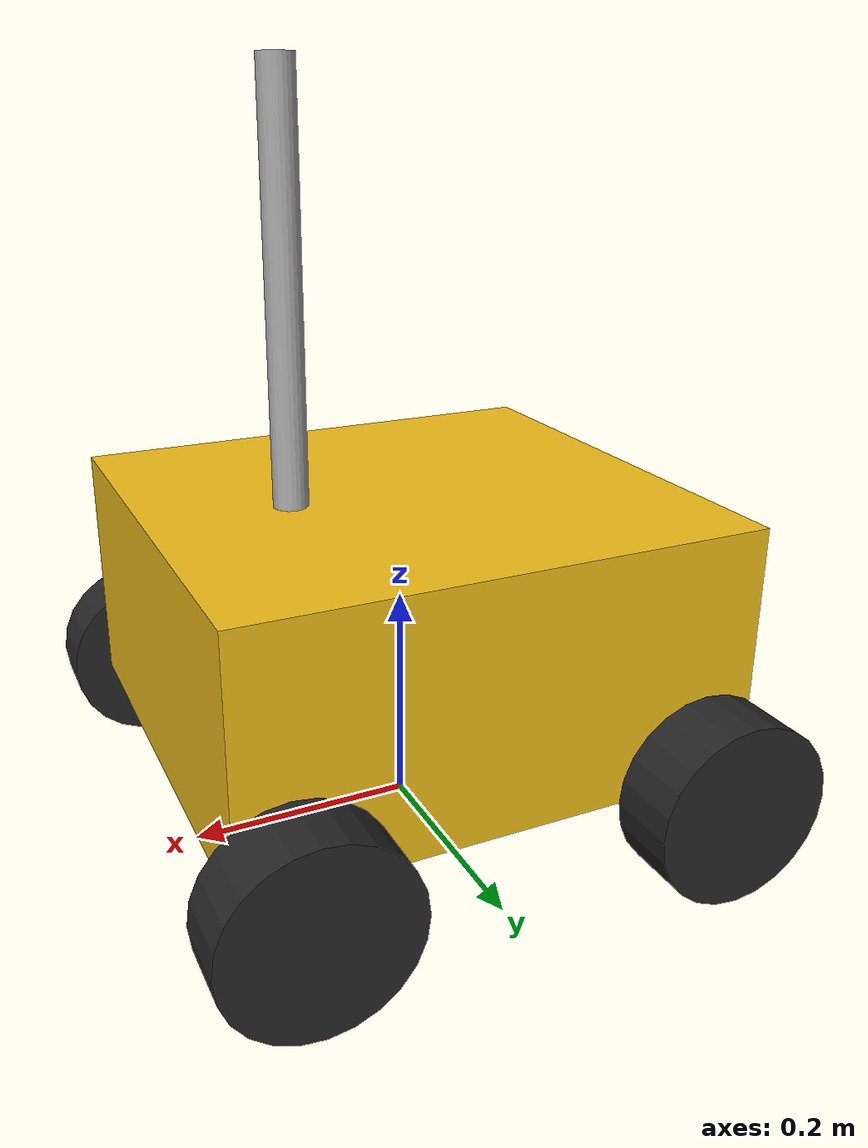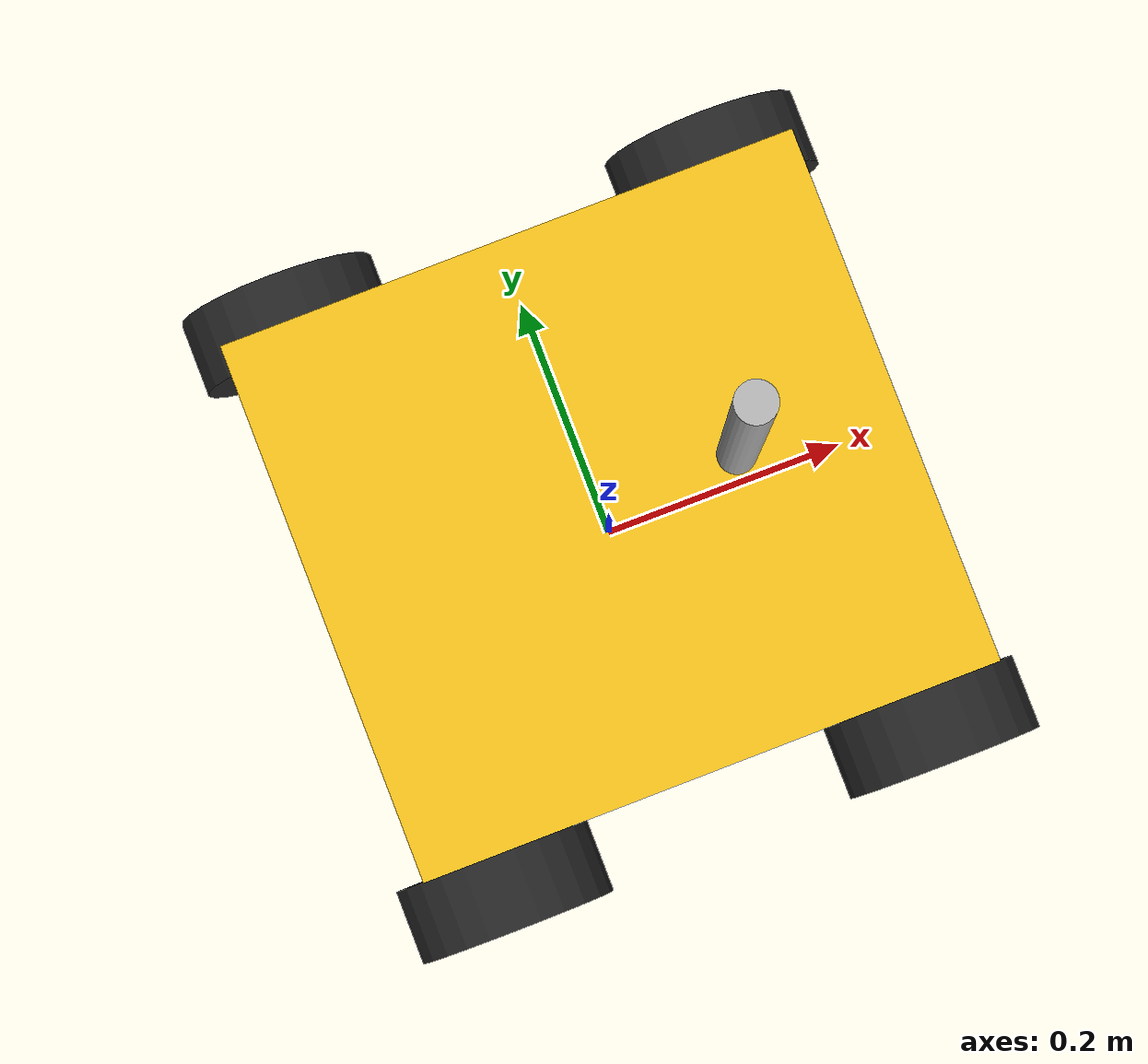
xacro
<?xml version="1.0"?>
<robot name="miners_rover" xmlns:xacro="http://www.ros.org/wiki/xacro">

  <!-- Robot Core Properties -->
  <xacro:property name="chassis_width" value="0.42" />
  <xacro:property name="chassis_length" value="0.45" />
  <xacro:property name="chassis_height" value="0.22" />
  <xacro:property name="wheel_radius" value="0.08" />
  <xacro:property name="wheel_width" value="0.06" />

  <!-- Base Footprint -->
  <link name="base_footprint"/>

  <joint name="base_footprint_joint" type="fixed">
    <parent link="base_footprint"/>
    <child link="base_link"/>
    <origin xyz="0 0 ${wheel_radius}" rpy="0 0 0"/>
  </joint>

  <!-- Base Link (Chassis Frame) -->
  <link name="base_link">
    <visual>
      <origin xyz="0 0 ${chassis_height/2}" rpy="0 0 0"/>
      <geometry>
        <box size="${chassis_length} ${chassis_width} ${chassis_height}"/>
      </geometry>
      <material name="yellow_gold">
        <color rgba="0.95 0.75 0.10 1.0"/>
      </material>
    </visual>
    <collision>
      <origin xyz="0 0 ${chassis_height/2}" rpy="0 0 0"/>
      <geometry>
        <box size="${chassis_length} ${chassis_width} ${chassis_height}"/>
      </geometry>
    </collision>
    <inertial>
      <mass value="6.5"/>
      <inertia ixx="0.12" ixy="0.0" ixz="0.0" iyy="0.15" iyz="0.0" izz="0.20"/>
    </inertial>
  </link>

  <!-- Wheels (4WD Skid Steer) -->
  <xacro:macro name="wheel" params="prefix x_reflect y_reflect">
    <link name="${prefix}_wheel">
      <visual>
        <geometry>
          <cylinder radius="${wheel_radius}" length="${wheel_width}"/>
        </geometry>
        <material name="black">
          <color rgba="0.15 0.15 0.15 1.0"/>
        </material>
      </visual>
      <collision>
        <geometry>
          <cylinder radius="${wheel_radius}" length="${wheel_width}"/>
        </geometry>
      </collision>
      <inertial>
        <mass value="0.6"/>
        <inertia ixx="0.001" ixy="0" ixz="0" iyy="0.001" iyz="0" izz="0.002"/>
      </inertial>
    </link>

    <joint name="${prefix}_wheel_joint" type="continuous">
      <parent link="base_link"/>
      <child link="${prefix}_wheel"/>
      <origin xyz="${x_reflect*chassis_length/2.5} ${y_reflect*(chassis_width/2 + wheel_width/2)} 0" rpy="${-pi/2} 0 0"/>
      <axis xyz="0 0 1"/>
    </joint>
  </xacro:macro>

  <xacro:wheel prefix="front_left" x_reflect="1" y_reflect="1" />
  <xacro:wheel prefix="front_right" x_reflect="1" y_reflect="-1" />
  <xacro:wheel prefix="rear_left" x_reflect="-1" y_reflect="1" />
  <xacro:wheel prefix="rear_right" x_reflect="-1" y_reflect="-1" />

  <!-- Camera & Thermal Mast -->
  <link name="camera_mast_link">
    <visual>
      <geometry>
        <cylinder radius="0.015" length="0.35"/>
      </geometry>
      <material name="silver">
        <color rgba="0.7 0.7 0.7 1.0"/>
      </material>
    </visual>
  </link>

  <joint name="camera_mast_joint" type="fixed">
    <parent link="base_link"/>
    <child link="camera_mast_link"/>
    <origin xyz="0.10 0 ${chassis_height + 0.175}" rpy="0 0 0"/>
  </joint>

  <!-- Gazebo 4WD Skid-Steer Differential Drive Plugin -->
  <gazebo>
    <plugin name="skid_steer_drive" filename="libgazebo_ros_diff_drive.so">
      <ros>
        <namespace>/miners</namespace>
      </ros>
      <num_wheel_pairs>2</num_wheel_pairs>
      <left_joint>front_left_wheel_joint</left_joint>
      <right_joint>front_right_wheel_joint</right_joint>
      <left_joint>rear_left_wheel_joint</left_joint>
      <right_joint>rear_right_wheel_joint</right_joint>
      <wheel_separation>${chassis_width + wheel_width}</wheel_separation>
      <wheel_diameter>${2 * wheel_radius}</wheel_diameter>
      <max_wheel_torque>20.0</max_wheel_torque>
      <max_wheel_acceleration>5.0</max_wheel_acceleration>
      <command_topic>cmd_vel</command_topic>
      <publish_odom>true</publish_odom>
      <publish_odom_tf>true</publish_odom_tf>
      <publish_wheel_tf>true</publish_wheel_tf>
      <odometry_topic>odom</odometry_topic>
      <odometry_frame>odom</odometry_frame>
      <robot_base_frame>base_footprint</robot_base_frame>
    </plugin>
  </gazebo>

</robot>
